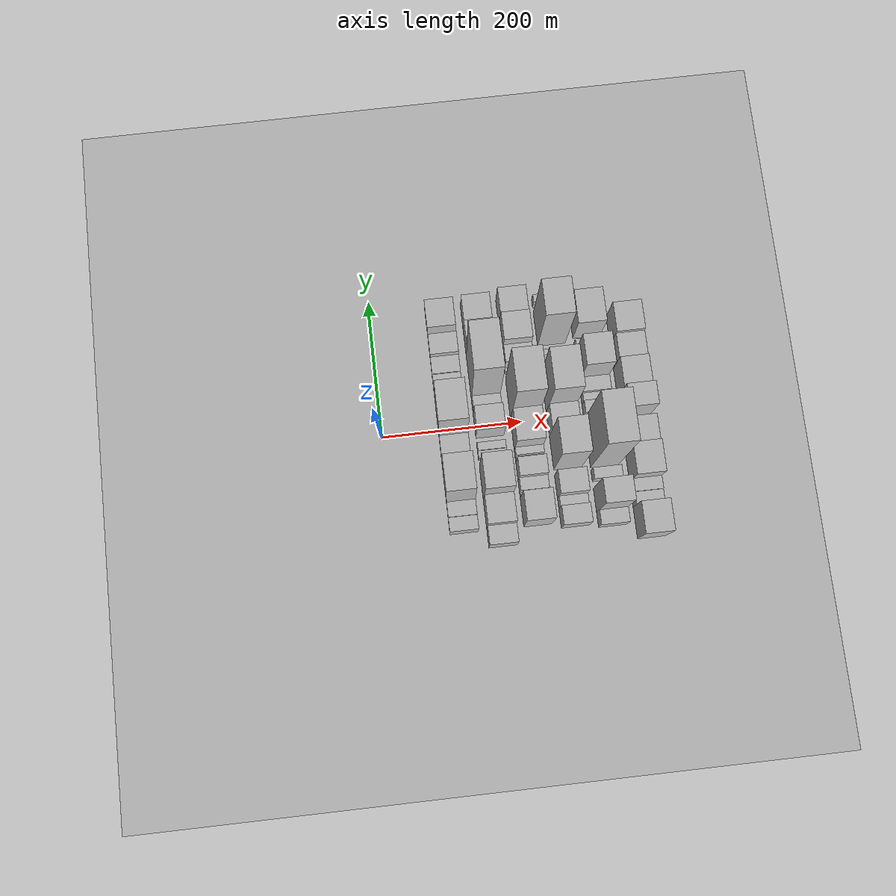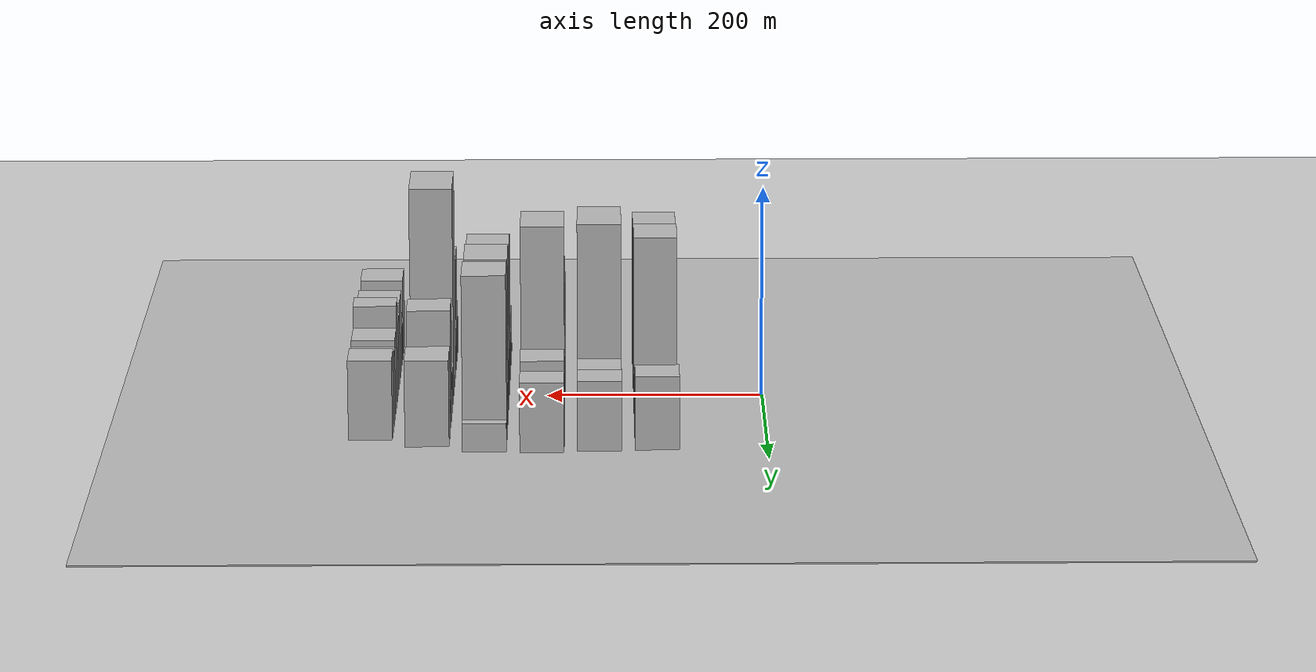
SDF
<sdf version="1.6">
 <world name="default">
  <include><name>ground_plane_1</name><uri>model://HANNAS_ground_plane</uri></include>
  <include>
   <name>ground_plane_2</name>
   <uri>model://HANNAS_ground_plane</uri>
   <pose>100 0 0  0 0 0</pose>
  </include>
  <model name="building_19">
   <static>1</static>
   <pose>100.0000 -138.1578 0 0.000000 0.000000 0.000000</pose>
   <link name="link">
    <pose>0 0 19.50 0 0 0</pose>
    <collision name="collision"><geometry><box><size>40.0000 19.9521 39.0000</size></box></geometry></collision>
    <visual name="visual">
     <cast_shadows>0</cast_shadows>
     <geometry><box><size>40.0000 19.9521 39.0000</size></box></geometry>
     <material>
      <script>
       <uri>model://HANNAS_wall/materials/scripts</uri>
       <uri>model://HANNAS_wall/materials/textures</uri>
       <name>vrc/HANNAS_wall</name>
      </script>
     </material>
    </visual>
   </link>
  </model>
  <model name="building_20">
   <static>1</static>
   <pose>100.0000 -117.5496 0 0.000000 0.000000 0.000000</pose>
   <link name="link">
    <pose>0 0 21.00 0 0 0</pose>
    <collision name="collision"><geometry><box><size>40.0000 21.2644 42.0000</size></box></geometry></collision>
    <visual name="visual">
     <cast_shadows>0</cast_shadows>
     <geometry><box><size>40.0000 21.2644 42.0000</size></box></geometry>
     <material>
      <script>
       <uri>model://HANNAS_wall/materials/scripts</uri>
       <uri>model://HANNAS_wall/materials/textures</uri>
       <name>vrc/HANNAS_wall</name>
      </script>
     </material>
    </visual>
   </link>
  </model>
  <model name="building_21">
   <static>1</static>
   <pose>100.0000 -82.2609 0 0.000000 0.000000 0.000000</pose>
   <link name="link">
    <pose>0 0 75.00 0 0 0</pose>
    <collision name="collision"><geometry><box><size>40.0000 49.3131 150.0000</size></box></geometry></collision>
    <visual name="visual">
     <cast_shadows>0</cast_shadows>
     <geometry><box><size>40.0000 49.3131 150.0000</size></box></geometry>
     <material>
      <script>
       <uri>model://HANNAS_wall/materials/scripts</uri>
       <uri>model://HANNAS_wall/materials/textures</uri>
       <name>vrc/HANNAS_wall</name>
      </script>
     </material>
    </visual>
   </link>
  </model>
  <model name="building_22">
   <static>1</static>
   <pose>100.0000 -32.2844 0 0.000000 0.000000 0.000000</pose>
   <link name="link">
    <pose>0 0 30.00 0 0 0</pose>
    <collision name="collision"><geometry><box><size>40.0000 30.6397 60.0000</size></box></geometry></collision>
    <visual name="visual">
     <cast_shadows>0</cast_shadows>
     <geometry><box><size>40.0000 30.6397 60.0000</size></box></geometry>
     <material>
      <script>
       <uri>model://HANNAS_wall/materials/scripts</uri>
       <uri>model://HANNAS_wall/materials/textures</uri>
       <name>vrc/HANNAS_wall</name>
      </script>
     </material>
    </visual>
   </link>
  </model>
  <model name="building_23">
   <static>1</static>
   <pose>100.0000 10.1463 0 0.000000 0.000000 0.000000</pose>
   <link name="link">
    <pose>0 0 81.00 0 0 0</pose>
    <collision name="collision"><geometry><box><size>40.0000 54.2218 162.0000</size></box></geometry></collision>
    <visual name="visual">
     <cast_shadows>0</cast_shadows>
     <geometry><box><size>40.0000 54.2218 162.0000</size></box></geometry>
     <material>
      <script>
       <uri>model://HANNAS_wall/materials/scripts</uri>
       <uri>model://HANNAS_wall/materials/textures</uri>
       <name>vrc/HANNAS_wall</name>
      </script>
     </material>
    </visual>
   </link>
  </model>
  <model name="building_24">
   <static>1</static>
   <pose>100.0000 47.6201 0 0.000000 0.000000 0.000000</pose>
   <link name="link">
    <pose>0 0 10.50 0 0 0</pose>
    <collision name="collision"><geometry><box><size>40.0000 8.7258 21.0000</size></box></geometry></collision>
    <visual name="visual">
     <cast_shadows>0</cast_shadows>
     <geometry><box><size>40.0000 8.7258 21.0000</size></box></geometry>
     <material>
      <script>
       <uri>model://HANNAS_wall/materials/scripts</uri>
       <uri>model://HANNAS_wall/materials/textures</uri>
       <name>vrc/HANNAS_wall</name>
      </script>
     </material>
    </visual>
   </link>
  </model>
  <model name="building_25">
   <static>1</static>
   <pose>100.0000 63.0984 0 0.000000 0.000000 0.000000</pose>
   <link name="link">
    <pose>0 0 19.50 0 0 0</pose>
    <collision name="collision"><geometry><box><size>40.0000 22.2308 39.0000</size></box></geometry></collision>
    <visual name="visual">
     <cast_shadows>0</cast_shadows>
     <geometry><box><size>40.0000 22.2308 39.0000</size></box></geometry>
     <material>
      <script>
       <uri>model://HANNAS_wall/materials/scripts</uri>
       <uri>model://HANNAS_wall/materials/textures</uri>
       <name>vrc/HANNAS_wall</name>
      </script>
     </material>
    </visual>
   </link>
  </model>
  <model name="building_26">
   <static>1</static>
   <pose>100.0000 86.5274 0 0.000000 0.000000 0.000000</pose>
   <link name="link">
    <pose>0 0 21.00 0 0 0</pose>
    <collision name="collision"><geometry><box><size>40.0000 24.6271 42.0000</size></box></geometry></collision>
    <visual name="visual">
     <cast_shadows>0</cast_shadows>
     <geometry><box><size>40.0000 24.6271 42.0000</size></box></geometry>
     <material>
      <script>
       <uri>model://HANNAS_wall/materials/scripts</uri>
       <uri>model://HANNAS_wall/materials/textures</uri>
       <name>vrc/HANNAS_wall</name>
      </script>
     </material>
    </visual>
   </link>
  </model>
  <model name="building_27">
   <static>1</static>
   <pose>100.0000 113.6051 0 0.000000 0.000000 0.000000</pose>
   <link name="link">
    <pose>0 0 28.50 0 0 0</pose>
    <collision name="collision"><geometry><box><size>40.0000 29.5284 57.0000</size></box></geometry></collision>
    <visual name="visual">
     <cast_shadows>0</cast_shadows>
     <geometry><box><size>40.0000 29.5284 57.0000</size></box></geometry>
     <material>
      <script>
       <uri>model://HANNAS_wall/materials/scripts</uri>
       <uri>model://HANNAS_wall/materials/textures</uri>
       <name>vrc/HANNAS_wall</name>
      </script>
     </material>
    </visual>
   </link>
  </model>
  <model name="building_28">
   <static>1</static>
   <pose>100.0000 154.4990 0 0.000000 0.000000 0.000000</pose>
   <link name="link">
    <pose>0 0 34.50 0 0 0</pose>
    <collision name="collision"><geometry><box><size>40.0000 40.2594 69.0000</size></box></geometry></collision>
    <visual name="visual">
     <cast_shadows>0</cast_shadows>
     <geometry><box><size>40.0000 40.2594 69.0000</size></box></geometry>
     <material>
      <script>
       <uri>model://HANNAS_wall/materials/scripts</uri>
       <uri>model://HANNAS_wall/materials/textures</uri>
       <name>vrc/HANNAS_wall</name>
      </script>
     </material>
    </visual>
   </link>
  </model>
  <model name="building_67">
   <static>1</static>
   <pose>152.0000 -159.3872 0 0.000000 0.000000 0.000000</pose>
   <link name="link">
    <pose>0 0 24.00 0 0 0</pose>
    <collision name="collision"><geometry><box><size>40.0000 26.5207 48.0000</size></box></geometry></collision>
    <visual name="visual">
     <cast_shadows>0</cast_shadows>
     <geometry><box><size>40.0000 26.5207 48.0000</size></box></geometry>
     <material>
      <script>
       <uri>model://HANNAS_wall/materials/scripts</uri>
       <uri>model://HANNAS_wall/materials/textures</uri>
       <name>vrc/HANNAS_wall</name>
      </script>
     </material>
    </visual>
   </link>
  </model>
  <model name="building_68">
   <static>1</static>
   <pose>152.0000 -126.0976 0 0.000000 0.000000 0.000000</pose>
   <link name="link">
    <pose>0 0 34.50 0 0 0</pose>
    <collision name="collision"><geometry><box><size>40.0000 40.0585 69.0000</size></box></geometry></collision>
    <visual name="visual">
     <cast_shadows>0</cast_shadows>
     <geometry><box><size>40.0000 40.0585 69.0000</size></box></geometry>
     <material>
      <script>
       <uri>model://HANNAS_wall/materials/scripts</uri>
       <uri>model://HANNAS_wall/materials/textures</uri>
       <name>vrc/HANNAS_wall</name>
      </script>
     </material>
    </visual>
   </link>
  </model>
  <model name="building_69">
   <static>1</static>
   <pose>152.0000 -82.0551 0 0.000000 0.000000 0.000000</pose>
   <link name="link">
    <pose>0 0 63.00 0 0 0</pose>
    <collision name="collision"><geometry><box><size>40.0000 48.0266 126.0000</size></box></geometry></collision>
    <visual name="visual">
     <cast_shadows>0</cast_shadows>
     <geometry><box><size>40.0000 48.0266 126.0000</size></box></geometry>
     <material>
      <script>
       <uri>model://HANNAS_wall/materials/scripts</uri>
       <uri>model://HANNAS_wall/materials/textures</uri>
       <name>vrc/HANNAS_wall</name>
      </script>
     </material>
    </visual>
   </link>
  </model>
  <model name="building_70">
   <static>1</static>
   <pose>152.0000 -42.9014 0 0.000000 0.000000 0.000000</pose>
   <link name="link">
    <pose>0 0 10.50 0 0 0</pose>
    <collision name="collision"><geometry><box><size>40.0000 10.2807 21.0000</size></box></geometry></collision>
    <visual name="visual">
     <cast_shadows>0</cast_shadows>
     <geometry><box><size>40.0000 10.2807 21.0000</size></box></geometry>
     <material>
      <script>
       <uri>model://HANNAS_wall/materials/scripts</uri>
       <uri>model://HANNAS_wall/materials/textures</uri>
       <name>vrc/HANNAS_wall</name>
      </script>
     </material>
    </visual>
   </link>
  </model>
  <model name="building_71">
   <static>1</static>
   <pose>152.0000 -31.9671 0 0.000000 0.000000 0.000000</pose>
   <link name="link">
    <pose>0 0 12.00 0 0 0</pose>
    <collision name="collision"><geometry><box><size>40.0000 11.5878 24.0000</size></box></geometry></collision>
    <visual name="visual">
     <cast_shadows>0</cast_shadows>
     <geometry><box><size>40.0000 11.5878 24.0000</size></box></geometry>
     <material>
      <script>
       <uri>model://HANNAS_wall/materials/scripts</uri>
       <uri>model://HANNAS_wall/materials/textures</uri>
       <name>vrc/HANNAS_wall</name>
      </script>
     </material>
    </visual>
   </link>
  </model>
  <model name="building_72">
   <static>1</static>
   <pose>152.0000 0.9617 0 0.000000 0.000000 0.000000</pose>
   <link name="link">
    <pose>0 0 33.00 0 0 0</pose>
    <collision name="collision"><geometry><box><size>40.0000 34.2699 66.0000</size></box></geometry></collision>
    <visual name="visual">
     <cast_shadows>0</cast_shadows>
     <geometry><box><size>40.0000 34.2699 66.0000</size></box></geometry>
     <material>
      <script>
       <uri>model://HANNAS_wall/materials/scripts</uri>
       <uri>model://HANNAS_wall/materials/textures</uri>
       <name>vrc/HANNAS_wall</name>
      </script>
     </material>
    </visual>
   </link>
  </model>
  <model name="building_73">
   <static>1</static>
   <pose>152.0000 27.9058 0 0.000000 0.000000 0.000000</pose>
   <link name="link">
    <pose>0 0 19.50 0 0 0</pose>
    <collision name="collision"><geometry><box><size>40.0000 19.6182 39.0000</size></box></geometry></collision>
    <visual name="visual">
     <cast_shadows>0</cast_shadows>
     <geometry><box><size>40.0000 19.6182 39.0000</size></box></geometry>
     <material>
      <script>
       <uri>model://HANNAS_wall/materials/scripts</uri>
       <uri>model://HANNAS_wall/materials/textures</uri>
       <name>vrc/HANNAS_wall</name>
      </script>
     </material>
    </visual>
   </link>
  </model>
  <model name="building_74">
   <static>1</static>
   <pose>152.0000 70.4620 0 0.000000 0.000000 0.000000</pose>
   <link name="link">
    <pose>0 0 96.00 0 0 0</pose>
    <collision name="collision"><geometry><box><size>40.0000 65.4942 192.0000</size></box></geometry></collision>
    <visual name="visual">
     <cast_shadows>0</cast_shadows>
     <geometry><box><size>40.0000 65.4942 192.0000</size></box></geometry>
     <material>
      <script>
       <uri>model://HANNAS_wall/materials/scripts</uri>
       <uri>model://HANNAS_wall/materials/textures</uri>
       <name>vrc/HANNAS_wall</name>
      </script>
     </material>
    </visual>
   </link>
  </model>
  <model name="building_75">
   <static>1</static>
   <pose>152.0000 121.6727 0 0.000000 0.000000 0.000000</pose>
   <link name="link">
    <pose>0 0 33.00 0 0 0</pose>
    <collision name="collision"><geometry><box><size>40.0000 36.9271 66.0000</size></box></geometry></collision>
    <visual name="visual">
     <cast_shadows>0</cast_shadows>
     <geometry><box><size>40.0000 36.9271 66.0000</size></box></geometry>
     <material>
      <script>
       <uri>model://HANNAS_wall/materials/scripts</uri>
       <uri>model://HANNAS_wall/materials/textures</uri>
       <name>vrc/HANNAS_wall</name>
      </script>
     </material>
    </visual>
   </link>
  </model>
  <model name="building_76">
   <static>1</static>
   <pose>152.0000 158.5414 0 0.000000 0.000000 0.000000</pose>
   <link name="link">
    <pose>0 0 33.00 0 0 0</pose>
    <collision name="collision"><geometry><box><size>40.0000 36.8104 66.0000</size></box></geometry></collision>
    <visual name="visual">
     <cast_shadows>0</cast_shadows>
     <geometry><box><size>40.0000 36.8104 66.0000</size></box></geometry>
     <material>
      <script>
       <uri>model://HANNAS_wall/materials/scripts</uri>
       <uri>model://HANNAS_wall/materials/textures</uri>
       <name>vrc/HANNAS_wall</name>
      </script>
     </material>
    </visual>
   </link>
  </model>
  <model name="building_123">
   <static>1</static>
   <pose>204.0000 -128.3855 0 0.000000 0.000000 0.000000</pose>
   <link name="link">
    <pose>0 0 40.50 0 0 0</pose>
    <collision name="collision"><geometry><box><size>40.0000 41.0634 81.0000</size></box></geometry></collision>
    <visual name="visual">
     <cast_shadows>0</cast_shadows>
     <geometry><box><size>40.0000 41.0634 81.0000</size></box></geometry>
     <material>
      <script>
       <uri>model://HANNAS_wall/materials/scripts</uri>
       <uri>model://HANNAS_wall/materials/textures</uri>
       <name>vrc/HANNAS_wall</name>
      </script>
     </material>
    </visual>
   </link>
  </model>
  <model name="building_124">
   <static>1</static>
   <pose>204.0000 -104.6912 0 0.000000 0.000000 0.000000</pose>
   <link name="link">
    <pose>0 0 7.50 0 0 0</pose>
    <collision name="collision"><geometry><box><size>40.0000 6.3252 15.0000</size></box></geometry></collision>
    <visual name="visual">
     <cast_shadows>0</cast_shadows>
     <geometry><box><size>40.0000 6.3252 15.0000</size></box></geometry>
     <material>
      <script>
       <uri>model://HANNAS_wall/materials/scripts</uri>
       <uri>model://HANNAS_wall/materials/textures</uri>
       <name>vrc/HANNAS_wall</name>
      </script>
     </material>
    </visual>
   </link>
  </model>
  <model name="building_125">
   <static>1</static>
   <pose>204.0000 -92.4181 0 0.000000 0.000000 0.000000</pose>
   <link name="link">
    <pose>0 0 16.50 0 0 0</pose>
    <collision name="collision"><geometry><box><size>40.0000 18.2209 33.0000</size></box></geometry></collision>
    <visual name="visual">
     <cast_shadows>0</cast_shadows>
     <geometry><box><size>40.0000 18.2209 33.0000</size></box></geometry>
     <material>
      <script>
       <uri>model://HANNAS_wall/materials/scripts</uri>
       <uri>model://HANNAS_wall/materials/textures</uri>
       <name>vrc/HANNAS_wall</name>
      </script>
     </material>
    </visual>
   </link>
  </model>
  <model name="building_126">
   <static>1</static>
   <pose>204.0000 -70.1956 0 0.000000 0.000000 0.000000</pose>
   <link name="link">
    <pose>0 0 25.50 0 0 0</pose>
    <collision name="collision"><geometry><box><size>40.0000 26.2242 51.0000</size></box></geometry></collision>
    <visual name="visual">
     <cast_shadows>0</cast_shadows>
     <geometry><box><size>40.0000 26.2242 51.0000</size></box></geometry>
     <material>
      <script>
       <uri>model://HANNAS_wall/materials/scripts</uri>
       <uri>model://HANNAS_wall/materials/textures</uri>
       <name>vrc/HANNAS_wall</name>
      </script>
     </material>
    </visual>
   </link>
  </model>
  <model name="building_127">
   <static>1</static>
   <pose>204.0000 -53.8236 0 0.000000 0.000000 0.000000</pose>
   <link name="link">
    <pose>0 0 7.50 0 0 0</pose>
    <collision name="collision"><geometry><box><size>40.0000 6.5197 15.0000</size></box></geometry></collision>
    <visual name="visual">
     <cast_shadows>0</cast_shadows>
     <geometry><box><size>40.0000 6.5197 15.0000</size></box></geometry>
     <material>
      <script>
       <uri>model://HANNAS_wall/materials/scripts</uri>
       <uri>model://HANNAS_wall/materials/textures</uri>
       <name>vrc/HANNAS_wall</name>
      </script>
     </material>
    </visual>
   </link>
  </model>
  <model name="building_128">
   <static>1</static>
   <pose>204.0000 -45.0045 0 0.000000 0.000000 0.000000</pose>
   <link name="link">
    <pose>0 0 13.50 0 0 0</pose>
    <collision name="collision"><geometry><box><size>40.0000 11.1185 27.0000</size></box></geometry></collision>
    <visual name="visual">
     <cast_shadows>0</cast_shadows>
     <geometry><box><size>40.0000 11.1185 27.0000</size></box></geometry>
     <material>
      <script>
       <uri>model://HANNAS_wall/materials/scripts</uri>
       <uri>model://HANNAS_wall/materials/textures</uri>
       <name>vrc/HANNAS_wall</name>
      </script>
     </material>
    </visual>
   </link>
  </model>
  <model name="building_129">
   <static>1</static>
   <pose>204.0000 -16.6995 0 0.000000 0.000000 0.000000</pose>
   <link name="link">
    <pose>0 0 39.00 0 0 0</pose>
    <collision name="collision"><geometry><box><size>40.0000 45.4915 78.0000</size></box></geometry></collision>
    <visual name="visual">
     <cast_shadows>0</cast_shadows>
     <geometry><box><size>40.0000 45.4915 78.0000</size></box></geometry>
     <material>
      <script>
       <uri>model://HANNAS_wall/materials/scripts</uri>
       <uri>model://HANNAS_wall/materials/textures</uri>
       <name>vrc/HANNAS_wall</name>
      </script>
     </material>
    </visual>
   </link>
  </model>
  <model name="building_130">
   <static>1</static>
   <pose>204.0000 35.1344 0 0.000000 0.000000 0.000000</pose>
   <link name="link">
    <pose>0 0 90.00 0 0 0</pose>
    <collision name="collision"><geometry><box><size>40.0000 58.1763 180.0000</size></box></geometry></collision>
    <visual name="visual">
     <cast_shadows>0</cast_shadows>
     <geometry><box><size>40.0000 58.1763 180.0000</size></box></geometry>
     <material>
      <script>
       <uri>model://HANNAS_wall/materials/scripts</uri>
       <uri>model://HANNAS_wall/materials/textures</uri>
       <name>vrc/HANNAS_wall</name>
      </script>
     </material>
    </visual>
   </link>
  </model>
  <model name="building_131">
   <static>1</static>
   <pose>204.0000 75.3250 0 0.000000 0.000000 0.000000</pose>
   <link name="link">
    <pose>0 0 7.50 0 0 0</pose>
    <collision name="collision"><geometry><box><size>40.0000 6.2050 15.0000</size></box></geometry></collision>
    <visual name="visual">
     <cast_shadows>0</cast_shadows>
     <geometry><box><size>40.0000 6.2050 15.0000</size></box></geometry>
     <material>
      <script>
       <uri>model://HANNAS_wall/materials/scripts</uri>
       <uri>model://HANNAS_wall/materials/textures</uri>
       <name>vrc/HANNAS_wall</name>
      </script>
     </material>
    </visual>
   </link>
  </model>
  <model name="building_132">
   <static>1</static>
   <pose>204.0000 91.0033 0 0.000000 0.000000 0.000000</pose>
   <link name="link">
    <pose>0 0 24.00 0 0 0</pose>
    <collision name="collision"><geometry><box><size>40.0000 25.1514 48.0000</size></box></geometry></collision>
    <visual name="visual">
     <cast_shadows>0</cast_shadows>
     <geometry><box><size>40.0000 25.1514 48.0000</size></box></geometry>
     <material>
      <script>
       <uri>model://HANNAS_wall/materials/scripts</uri>
       <uri>model://HANNAS_wall/materials/textures</uri>
       <name>vrc/HANNAS_wall</name>
      </script>
     </material>
    </visual>
   </link>
  </model>
  <model name="building_133">
   <static>1</static>
   <pose>204.0000 123.4638 0 0.000000 0.000000 0.000000</pose>
   <link name="link">
    <pose>0 0 37.50 0 0 0</pose>
    <collision name="collision"><geometry><box><size>40.0000 39.7696 75.0000</size></box></geometry></collision>
    <visual name="visual">
     <cast_shadows>0</cast_shadows>
     <geometry><box><size>40.0000 39.7696 75.0000</size></box></geometry>
     <material>
      <script>
       <uri>model://HANNAS_wall/materials/scripts</uri>
       <uri>model://HANNAS_wall/materials/textures</uri>
       <name>vrc/HANNAS_wall</name>
      </script>
     </material>
    </visual>
   </link>
  </model>
  <model name="building_134">
   <static>1</static>
   <pose>204.0000 162.6106 0 0.000000 0.000000 0.000000</pose>
   <link name="link">
    <pose>0 0 33.00 0 0 0</pose>
    <collision name="collision"><geometry><box><size>40.0000 38.5240 66.0000</size></box></geometry></collision>
    <visual name="visual">
     <cast_shadows>0</cast_shadows>
     <geometry><box><size>40.0000 38.5240 66.0000</size></box></geometry>
     <material>
      <script>
       <uri>model://HANNAS_wall/materials/scripts</uri>
       <uri>model://HANNAS_wall/materials/textures</uri>
       <name>vrc/HANNAS_wall</name>
      </script>
     </material>
    </visual>
   </link>
  </model>
  <model name="building_179">
   <static>1</static>
   <pose>256.0000 -143.0952 0 0.000000 0.000000 0.000000</pose>
   <link name="link">
    <pose>0 0 22.50 0 0 0</pose>
    <collision name="collision"><geometry><box><size>40.0000 26.8374 45.0000</size></box></geometry></collision>
    <visual name="visual">
     <cast_shadows>0</cast_shadows>
     <geometry><box><size>40.0000 26.8374 45.0000</size></box></geometry>
     <material>
      <script>
       <uri>model://HANNAS_wall/materials/scripts</uri>
       <uri>model://HANNAS_wall/materials/textures</uri>
       <name>vrc/HANNAS_wall</name>
      </script>
     </material>
    </visual>
   </link>
  </model>
  <model name="building_180">
   <static>1</static>
   <pose>256.0000 -122.0946 0 0.000000 0.000000 0.000000</pose>
   <link name="link">
    <pose>0 0 15.00 0 0 0</pose>
    <collision name="collision"><geometry><box><size>40.0000 15.1639 30.0000</size></box></geometry></collision>
    <visual name="visual">
     <cast_shadows>0</cast_shadows>
     <geometry><box><size>40.0000 15.1639 30.0000</size></box></geometry>
     <material>
      <script>
       <uri>model://HANNAS_wall/materials/scripts</uri>
       <uri>model://HANNAS_wall/materials/textures</uri>
       <name>vrc/HANNAS_wall</name>
      </script>
     </material>
    </visual>
   </link>
  </model>
  <model name="building_181">
   <static>1</static>
   <pose>256.0000 -98.0366 0 0.000000 0.000000 0.000000</pose>
   <link name="link">
    <pose>0 0 28.50 0 0 0</pose>
    <collision name="collision"><geometry><box><size>40.0000 32.9520 57.0000</size></box></geometry></collision>
    <visual name="visual">
     <cast_shadows>0</cast_shadows>
     <geometry><box><size>40.0000 32.9520 57.0000</size></box></geometry>
     <material>
      <script>
       <uri>model://HANNAS_wall/materials/scripts</uri>
       <uri>model://HANNAS_wall/materials/textures</uri>
       <name>vrc/HANNAS_wall</name>
      </script>
     </material>
    </visual>
   </link>
  </model>
  <model name="building_182">
   <static>1</static>
   <pose>256.0000 -49.0887 0 0.000000 0.000000 0.000000</pose>
   <link name="link">
    <pose>0 0 69.00 0 0 0</pose>
    <collision name="collision"><geometry><box><size>40.0000 48.9437 138.0000</size></box></geometry></collision>
    <visual name="visual">
     <cast_shadows>0</cast_shadows>
     <geometry><box><size>40.0000 48.9437 138.0000</size></box></geometry>
     <material>
      <script>
       <uri>model://HANNAS_wall/materials/scripts</uri>
       <uri>model://HANNAS_wall/materials/textures</uri>
       <name>vrc/HANNAS_wall</name>
      </script>
     </material>
    </visual>
   </link>
  </model>
  <model name="building_183">
   <static>1</static>
   <pose>256.0000 -5.7033 0 0.000000 0.000000 0.000000</pose>
   <link name="link">
    <pose>0 0 30.00 0 0 0</pose>
    <collision name="collision"><geometry><box><size>40.0000 31.8271 60.0000</size></box></geometry></collision>
    <visual name="visual">
     <cast_shadows>0</cast_shadows>
     <geometry><box><size>40.0000 31.8271 60.0000</size></box></geometry>
     <material>
      <script>
       <uri>model://HANNAS_wall/materials/scripts</uri>
       <uri>model://HANNAS_wall/materials/textures</uri>
       <name>vrc/HANNAS_wall</name>
      </script>
     </material>
    </visual>
   </link>
  </model>
  <model name="building_184">
   <static>1</static>
   <pose>256.0000 38.7770 0 0.000000 0.000000 0.000000</pose>
   <link name="link">
    <pose>0 0 75.00 0 0 0</pose>
    <collision name="collision"><geometry><box><size>40.0000 57.1335 150.0000</size></box></geometry></collision>
    <visual name="visual">
     <cast_shadows>0</cast_shadows>
     <geometry><box><size>40.0000 57.1335 150.0000</size></box></geometry>
     <material>
      <script>
       <uri>model://HANNAS_wall/materials/scripts</uri>
       <uri>model://HANNAS_wall/materials/textures</uri>
       <name>vrc/HANNAS_wall</name>
      </script>
     </material>
    </visual>
   </link>
  </model>
  <model name="building_185">
   <static>1</static>
   <pose>256.0000 76.5210 0 0.000000 0.000000 0.000000</pose>
   <link name="link">
    <pose>0 0 18.00 0 0 0</pose>
    <collision name="collision"><geometry><box><size>40.0000 18.3544 36.0000</size></box></geometry></collision>
    <visual name="visual">
     <cast_shadows>0</cast_shadows>
     <geometry><box><size>40.0000 18.3544 36.0000</size></box></geometry>
     <material>
      <script>
       <uri>model://HANNAS_wall/materials/scripts</uri>
       <uri>model://HANNAS_wall/materials/textures</uri>
       <name>vrc/HANNAS_wall</name>
      </script>
     </material>
    </visual>
   </link>
  </model>
  <model name="building_186">
   <static>1</static>
   <pose>256.0000 93.9487 0 0.000000 0.000000 0.000000</pose>
   <link name="link">
    <pose>0 0 9.00 0 0 0</pose>
    <collision name="collision"><geometry><box><size>40.0000 8.5010 18.0000</size></box></geometry></collision>
    <visual name="visual">
     <cast_shadows>0</cast_shadows>
     <geometry><box><size>40.0000 8.5010 18.0000</size></box></geometry>
     <material>
      <script>
       <uri>model://HANNAS_wall/materials/scripts</uri>
       <uri>model://HANNAS_wall/materials/textures</uri>
       <name>vrc/HANNAS_wall</name>
      </script>
     </material>
    </visual>
   </link>
  </model>
  <model name="building_187">
   <static>1</static>
   <pose>256.0000 133.1462 0 0.000000 0.000000 0.000000</pose>
   <link name="link">
    <pose>0 0 79.50 0 0 0</pose>
    <collision name="collision"><geometry><box><size>40.0000 49.8939 159.0000</size></box></geometry></collision>
    <visual name="visual">
     <cast_shadows>0</cast_shadows>
     <geometry><box><size>40.0000 49.8939 159.0000</size></box></geometry>
     <material>
      <script>
       <uri>model://HANNAS_wall/materials/scripts</uri>
       <uri>model://HANNAS_wall/materials/textures</uri>
       <name>vrc/HANNAS_wall</name>
      </script>
     </material>
    </visual>
   </link>
  </model>
  <model name="building_188">
   <static>1</static>
   <pose>256.0000 171.9852 0 0.000000 0.000000 0.000000</pose>
   <link name="link">
    <pose>0 0 13.50 0 0 0</pose>
    <collision name="collision"><geometry><box><size>40.0000 11.7841 27.0000</size></box></geometry></collision>
    <visual name="visual">
     <cast_shadows>0</cast_shadows>
     <geometry><box><size>40.0000 11.7841 27.0000</size></box></geometry>
     <material>
      <script>
       <uri>model://HANNAS_wall/materials/scripts</uri>
       <uri>model://HANNAS_wall/materials/textures</uri>
       <name>vrc/HANNAS_wall</name>
      </script>
     </material>
    </visual>
   </link>
  </model>
  <model name="building_229">
   <static>1</static>
   <pose>308.0000 -150.7824 0 0.000000 0.000000 0.000000</pose>
   <link name="link">
    <pose>0 0 18.00 0 0 0</pose>
    <collision name="collision"><geometry><box><size>40.0000 20.9984 36.0000</size></box></geometry></collision>
    <visual name="visual">
     <cast_shadows>0</cast_shadows>
     <geometry><box><size>40.0000 20.9984 36.0000</size></box></geometry>
     <material>
      <script>
       <uri>model://HANNAS_wall/materials/scripts</uri>
       <uri>model://HANNAS_wall/materials/textures</uri>
       <name>vrc/HANNAS_wall</name>
      </script>
     </material>
    </visual>
   </link>
  </model>
  <model name="building_230">
   <static>1</static>
   <pose>308.0000 -123.2971 0 0.000000 0.000000 0.000000</pose>
   <link name="link">
    <pose>0 0 54.00 0 0 0</pose>
    <collision name="collision"><geometry><box><size>40.0000 33.9723 108.0000</size></box></geometry></collision>
    <visual name="visual">
     <cast_shadows>0</cast_shadows>
     <geometry><box><size>40.0000 33.9723 108.0000</size></box></geometry>
     <material>
      <script>
       <uri>model://HANNAS_wall/materials/scripts</uri>
       <uri>model://HANNAS_wall/materials/textures</uri>
       <name>vrc/HANNAS_wall</name>
      </script>
     </material>
    </visual>
   </link>
  </model>
  <model name="building_231">
   <static>1</static>
   <pose>308.0000 -88.3254 0 0.000000 0.000000 0.000000</pose>
   <link name="link">
    <pose>0 0 15.00 0 0 0</pose>
    <collision name="collision"><geometry><box><size>40.0000 15.9711 30.0000</size></box></geometry></collision>
    <visual name="visual">
     <cast_shadows>0</cast_shadows>
     <geometry><box><size>40.0000 15.9711 30.0000</size></box></geometry>
     <material>
      <script>
       <uri>model://HANNAS_wall/materials/scripts</uri>
       <uri>model://HANNAS_wall/materials/textures</uri>
       <name>vrc/HANNAS_wall</name>
      </script>
     </material>
    </visual>
   </link>
  </model>
  <model name="building_232">
   <static>1</static>
   <pose>308.0000 -41.8450 0 0.000000 0.000000 0.000000</pose>
   <link name="link">
    <pose>0 0 99.00 0 0 0</pose>
    <collision name="collision"><geometry><box><size>40.0000 68.9897 198.0000</size></box></geometry></collision>
    <visual name="visual">
     <cast_shadows>0</cast_shadows>
     <geometry><box><size>40.0000 68.9897 198.0000</size></box></geometry>
     <material>
      <script>
       <uri>model://HANNAS_wall/materials/scripts</uri>
       <uri>model://HANNAS_wall/materials/textures</uri>
       <name>vrc/HANNAS_wall</name>
      </script>
     </material>
    </visual>
   </link>
  </model>
  <model name="building_233">
   <static>1</static>
   <pose>308.0000 6.3272 0 0.000000 0.000000 0.000000</pose>
   <link name="link">
    <pose>0 0 16.50 0 0 0</pose>
    <collision name="collision"><geometry><box><size>40.0000 17.3547 33.0000</size></box></geometry></collision>
    <visual name="visual">
     <cast_shadows>0</cast_shadows>
     <geometry><box><size>40.0000 17.3547 33.0000</size></box></geometry>
     <material>
      <script>
       <uri>model://HANNAS_wall/materials/scripts</uri>
       <uri>model://HANNAS_wall/materials/textures</uri>
       <name>vrc/HANNAS_wall</name>
      </script>
     </material>
    </visual>
   </link>
  </model>
  <model name="building_234">
   <static>1</static>
   <pose>308.0000 20.9290 0 0.000000 0.000000 0.000000</pose>
   <link name="link">
    <pose>0 0 13.50 0 0 0</pose>
    <collision name="collision"><geometry><box><size>40.0000 11.8490 27.0000</size></box></geometry></collision>
    <visual name="visual">
     <cast_shadows>0</cast_shadows>
     <geometry><box><size>40.0000 11.8490 27.0000</size></box></geometry>
     <material>
      <script>
       <uri>model://HANNAS_wall/materials/scripts</uri>
       <uri>model://HANNAS_wall/materials/textures</uri>
       <name>vrc/HANNAS_wall</name>
      </script>
     </material>
    </visual>
   </link>
  </model>
  <model name="building_235">
   <static>1</static>
   <pose>308.0000 37.3823 0 0.000000 0.000000 0.000000</pose>
   <link name="link">
    <pose>0 0 18.00 0 0 0</pose>
    <collision name="collision"><geometry><box><size>40.0000 21.0576 36.0000</size></box></geometry></collision>
    <visual name="visual">
     <cast_shadows>0</cast_shadows>
     <geometry><box><size>40.0000 21.0576 36.0000</size></box></geometry>
     <material>
      <script>
       <uri>model://HANNAS_wall/materials/scripts</uri>
       <uri>model://HANNAS_wall/materials/textures</uri>
       <name>vrc/HANNAS_wall</name>
      </script>
     </material>
    </visual>
   </link>
  </model>
  <model name="building_236">
   <static>1</static>
   <pose>308.0000 69.4950 0 0.000000 0.000000 0.000000</pose>
   <link name="link">
    <pose>0 0 54.00 0 0 0</pose>
    <collision name="collision"><geometry><box><size>40.0000 43.1678 108.0000</size></box></geometry></collision>
    <visual name="visual">
     <cast_shadows>0</cast_shadows>
     <geometry><box><size>40.0000 43.1678 108.0000</size></box></geometry>
     <material>
      <script>
       <uri>model://HANNAS_wall/materials/scripts</uri>
       <uri>model://HANNAS_wall/materials/textures</uri>
       <name>vrc/HANNAS_wall</name>
      </script>
     </material>
    </visual>
   </link>
  </model>
  <model name="building_237">
   <static>1</static>
   <pose>308.0000 99.9679 0 0.000000 0.000000 0.000000</pose>
   <link name="link">
    <pose>0 0 13.50 0 0 0</pose>
    <collision name="collision"><geometry><box><size>40.0000 11.7781 27.0000</size></box></geometry></collision>
    <visual name="visual">
     <cast_shadows>0</cast_shadows>
     <geometry><box><size>40.0000 11.7781 27.0000</size></box></geometry>
     <material>
      <script>
       <uri>model://HANNAS_wall/materials/scripts</uri>
       <uri>model://HANNAS_wall/materials/textures</uri>
       <name>vrc/HANNAS_wall</name>
      </script>
     </material>
    </visual>
   </link>
  </model>
  <model name="building_238">
   <static>1</static>
   <pose>308.0000 138.0370 0 0.000000 0.000000 0.000000</pose>
   <link name="link">
    <pose>0 0 40.50 0 0 0</pose>
    <collision name="collision"><geometry><box><size>40.0000 48.3602 81.0000</size></box></geometry></collision>
    <visual name="visual">
     <cast_shadows>0</cast_shadows>
     <geometry><box><size>40.0000 48.3602 81.0000</size></box></geometry>
     <material>
      <script>
       <uri>model://HANNAS_wall/materials/scripts</uri>
       <uri>model://HANNAS_wall/materials/textures</uri>
       <name>vrc/HANNAS_wall</name>
      </script>
     </material>
    </visual>
   </link>
  </model>
  <model name="building_280">
   <static>1</static>
   <pose>360.0000 -160.9984 0 0.000000 0.000000 0.000000</pose>
   <link name="link">
    <pose>0 0 37.50 0 0 0</pose>
    <collision name="collision"><geometry><box><size>40.0000 44.5002 75.0000</size></box></geometry></collision>
    <visual name="visual">
     <cast_shadows>0</cast_shadows>
     <geometry><box><size>40.0000 44.5002 75.0000</size></box></geometry>
     <material>
      <script>
       <uri>model://HANNAS_wall/materials/scripts</uri>
       <uri>model://HANNAS_wall/materials/textures</uri>
       <name>vrc/HANNAS_wall</name>
      </script>
     </material>
    </visual>
   </link>
  </model>
  <model name="building_281">
   <static>1</static>
   <pose>360.0000 -129.8141 0 0.000000 0.000000 0.000000</pose>
   <link name="link">
    <pose>0 0 16.50 0 0 0</pose>
    <collision name="collision"><geometry><box><size>40.0000 17.8683 33.0000</size></box></geometry></collision>
    <visual name="visual">
     <cast_shadows>0</cast_shadows>
     <geometry><box><size>40.0000 17.8683 33.0000</size></box></geometry>
     <material>
      <script>
       <uri>model://HANNAS_wall/materials/scripts</uri>
       <uri>model://HANNAS_wall/materials/textures</uri>
       <name>vrc/HANNAS_wall</name>
      </script>
     </material>
    </visual>
   </link>
  </model>
  <model name="building_282">
   <static>1</static>
   <pose>360.0000 -111.6791 0 0.000000 0.000000 0.000000</pose>
   <link name="link">
    <pose>0 0 18.00 0 0 0</pose>
    <collision name="collision"><geometry><box><size>40.0000 18.4016 36.0000</size></box></geometry></collision>
    <visual name="visual">
     <cast_shadows>0</cast_shadows>
     <geometry><box><size>40.0000 18.4016 36.0000</size></box></geometry>
     <material>
      <script>
       <uri>model://HANNAS_wall/materials/scripts</uri>
       <uri>model://HANNAS_wall/materials/textures</uri>
       <name>vrc/HANNAS_wall</name>
      </script>
     </material>
    </visual>
   </link>
  </model>
  <model name="building_283">
   <static>1</static>
   <pose>360.0000 -80.0749 0 0.000000 0.000000 0.000000</pose>
   <link name="link">
    <pose>0 0 37.50 0 0 0</pose>
    <collision name="collision"><geometry><box><size>40.0000 44.8068 75.0000</size></box></geometry></collision>
    <visual name="visual">
     <cast_shadows>0</cast_shadows>
     <geometry><box><size>40.0000 44.8068 75.0000</size></box></geometry>
     <material>
      <script>
       <uri>model://HANNAS_wall/materials/scripts</uri>
       <uri>model://HANNAS_wall/materials/textures</uri>
       <name>vrc/HANNAS_wall</name>
      </script>
     </material>
    </visual>
   </link>
  </model>
  <model name="building_284">
   <static>1</static>
   <pose>360.0000 -39.0827 0 0.000000 0.000000 0.000000</pose>
   <link name="link">
    <pose>0 0 33.00 0 0 0</pose>
    <collision name="collision"><geometry><box><size>40.0000 37.1777 66.0000</size></box></geometry></collision>
    <visual name="visual">
     <cast_shadows>0</cast_shadows>
     <geometry><box><size>40.0000 37.1777 66.0000</size></box></geometry>
     <material>
      <script>
       <uri>model://HANNAS_wall/materials/scripts</uri>
       <uri>model://HANNAS_wall/materials/textures</uri>
       <name>vrc/HANNAS_wall</name>
      </script>
     </material>
    </visual>
   </link>
  </model>
  <model name="building_285">
   <static>1</static>
   <pose>360.0000 3.6284 0 0.000000 0.000000 0.000000</pose>
   <link name="link">
    <pose>0 0 46.50 0 0 0</pose>
    <collision name="collision"><geometry><box><size>40.0000 32.2446 93.0000</size></box></geometry></collision>
    <visual name="visual">
     <cast_shadows>0</cast_shadows>
     <geometry><box><size>40.0000 32.2446 93.0000</size></box></geometry>
     <material>
      <script>
       <uri>model://HANNAS_wall/materials/scripts</uri>
       <uri>model://HANNAS_wall/materials/textures</uri>
       <name>vrc/HANNAS_wall</name>
      </script>
     </material>
    </visual>
   </link>
  </model>
  <model name="building_286">
   <static>1</static>
   <pose>360.0000 41.1493 0 0.000000 0.000000 0.000000</pose>
   <link name="link">
    <pose>0 0 36.00 0 0 0</pose>
    <collision name="collision"><geometry><box><size>40.0000 42.7971 72.0000</size></box></geometry></collision>
    <visual name="visual">
     <cast_shadows>0</cast_shadows>
     <geometry><box><size>40.0000 42.7971 72.0000</size></box></geometry>
     <material>
      <script>
       <uri>model://HANNAS_wall/materials/scripts</uri>
       <uri>model://HANNAS_wall/materials/textures</uri>
       <name>vrc/HANNAS_wall</name>
      </script>
     </material>
    </visual>
   </link>
  </model>
  <model name="building_287">
   <static>1</static>
   <pose>360.0000 80.2276 0 0.000000 0.000000 0.000000</pose>
   <link name="link">
    <pose>0 0 33.00 0 0 0</pose>
    <collision name="collision"><geometry><box><size>40.0000 35.3597 66.0000</size></box></geometry></collision>
    <visual name="visual">
     <cast_shadows>0</cast_shadows>
     <geometry><box><size>40.0000 35.3597 66.0000</size></box></geometry>
     <material>
      <script>
       <uri>model://HANNAS_wall/materials/scripts</uri>
       <uri>model://HANNAS_wall/materials/textures</uri>
       <name>vrc/HANNAS_wall</name>
      </script>
     </material>
    </visual>
   </link>
  </model>
  <model name="building_288">
   <static>1</static>
   <pose>360.0000 118.9986 0 0.000000 0.000000 0.000000</pose>
   <link name="link">
    <pose>0 0 37.50 0 0 0</pose>
    <collision name="collision"><geometry><box><size>40.0000 42.1823 75.0000</size></box></geometry></collision>
    <visual name="visual">
     <cast_shadows>0</cast_shadows>
     <geometry><box><size>40.0000 42.1823 75.0000</size></box></geometry>
     <material>
      <script>
       <uri>model://HANNAS_wall/materials/scripts</uri>
       <uri>model://HANNAS_wall/materials/textures</uri>
       <name>vrc/HANNAS_wall</name>
      </script>
     </material>
    </visual>
   </link>
  </model>
 </world>
</sdf>
